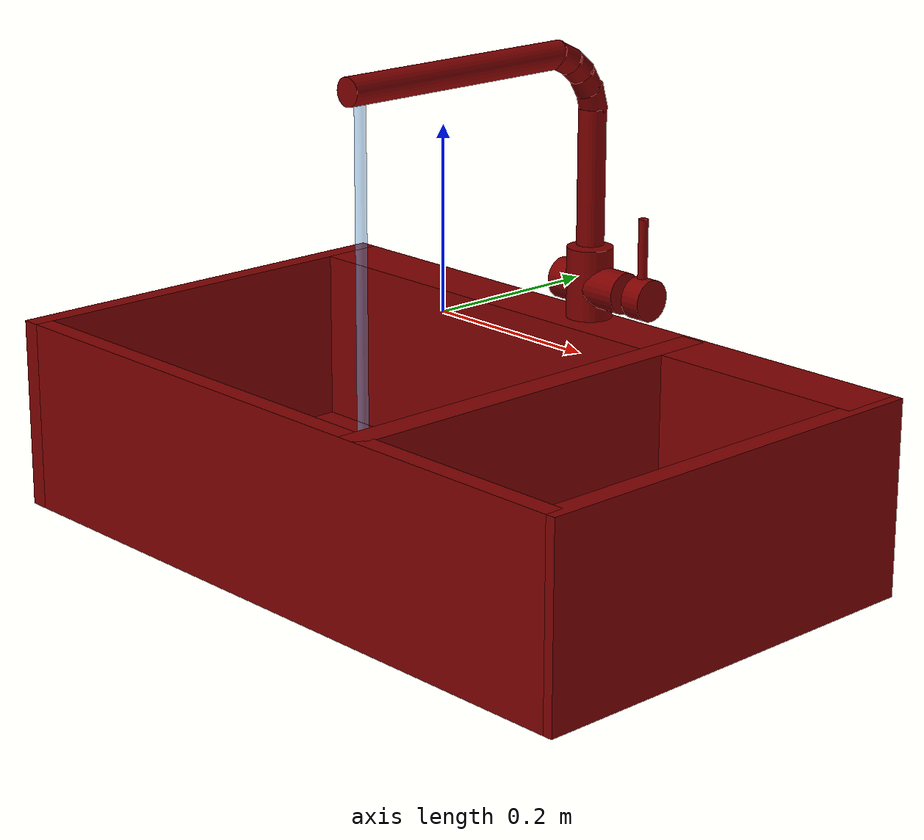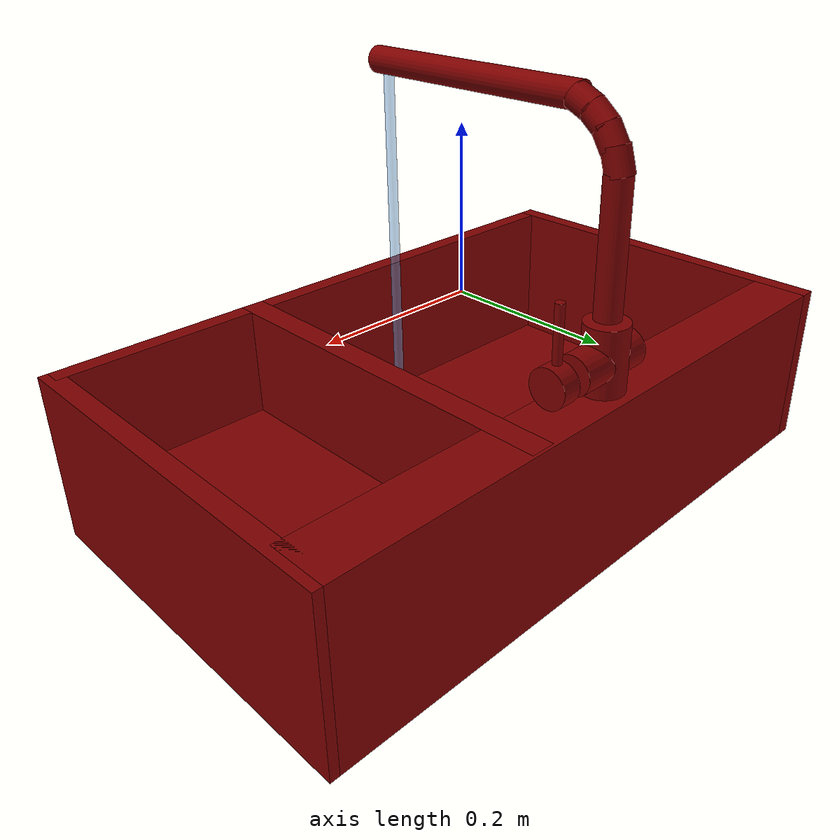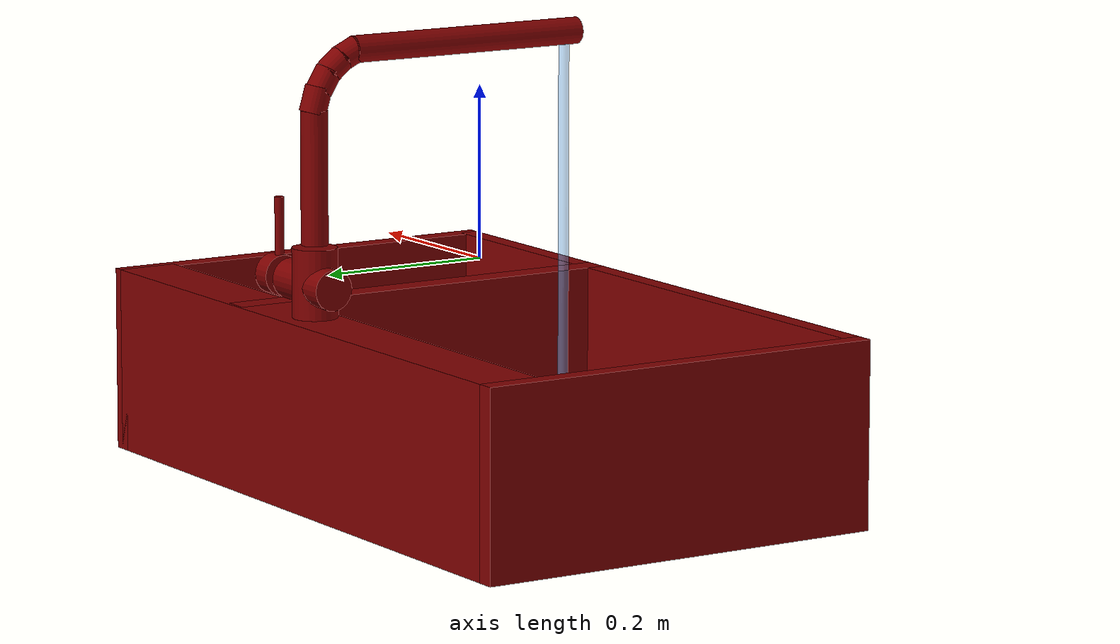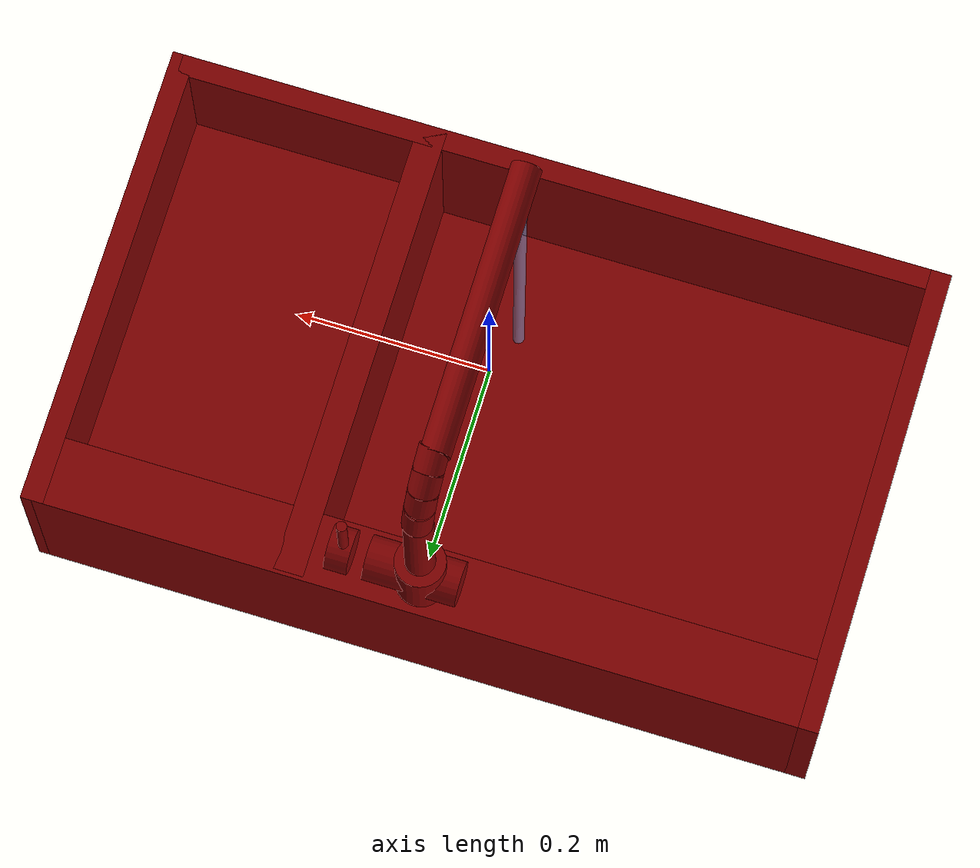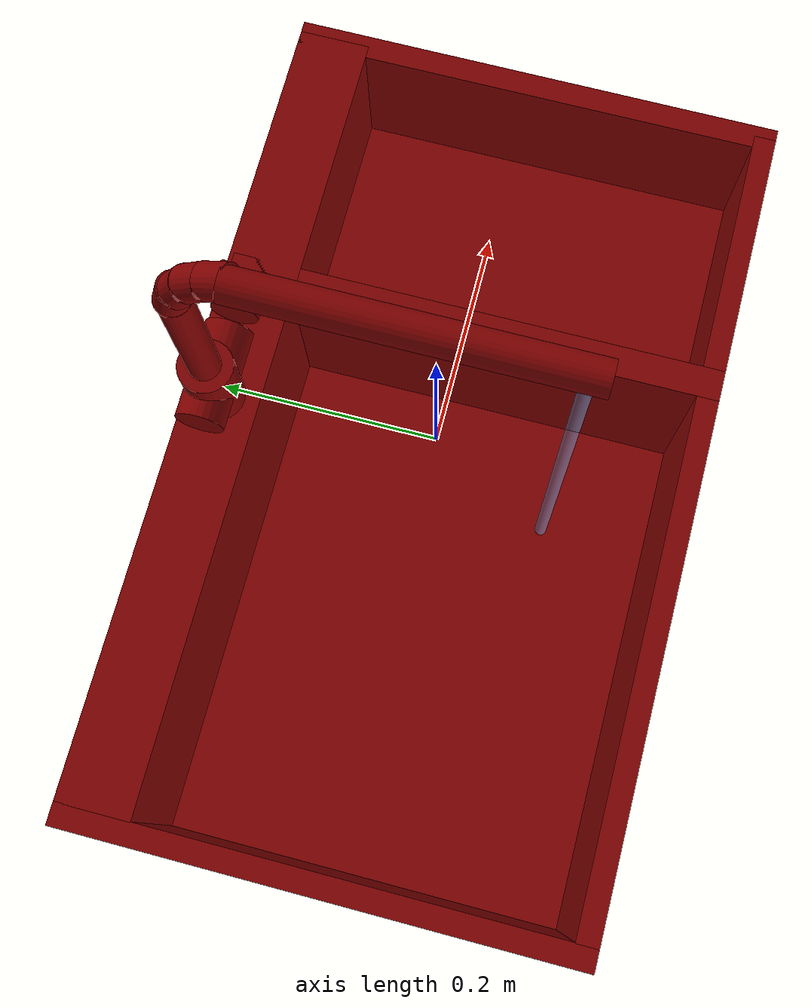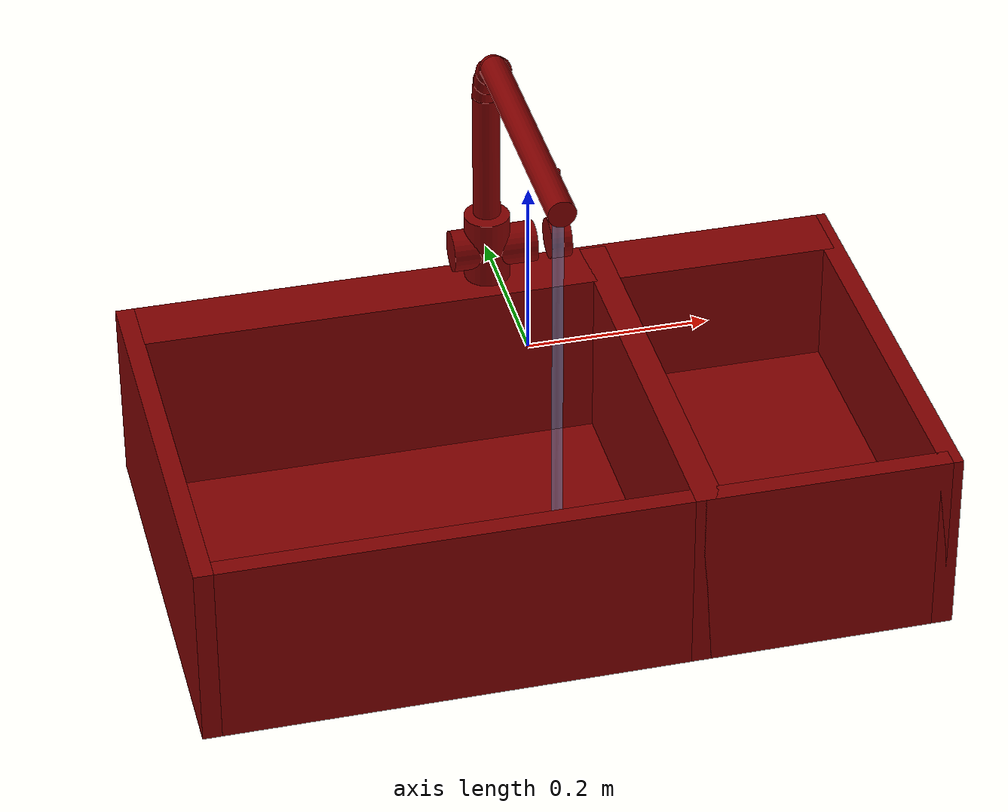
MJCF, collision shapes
<?xml version='1.0' encoding='UTF-8'?>
<mujoco model="model">
  <option timestep="0.002" gravity="0.0 0.0 -9.81"/>
  <compiler angle="radian"/>
  <asset>
    <mesh file="visuals/handle.obj" name="handle_vis"/>
    <mesh file="visuals/Body001.obj" name="Body001_vis"/>
    <mesh file="visuals/spout.obj" name="spout_vis"/>
    <texture file="visuals/T_BC001.png" name="Body001_material" type="2d"/>
    <material name="Body001_material" rgba="1 1 1 1.0" texture="Body001_material" shininess="0.2" specular="0.8"/>
    <texture file="visuals/T_BC001.png" name="handle_material" type="2d"/>
    <material name="handle_material" rgba="1 1 1 1.0" texture="handle_material" shininess="0.2" specular="1"/>
    <texture file="visuals/T_BC001.png" name="spout_material" type="2d"/>
    <material name="spout_material" rgba="1 1 1 1.0" texture="spout_material" shininess="0.1" specular="1"/>
  </asset>
  <default>
    <default class="visual">
      <geom conaffinity="0" contype="0" group="1" type="mesh"/>
    </default>
    <default class="collision">
      <geom group="0" rgba="0.5 0 0 0.5" solimp="0.998 0.998 0.001" solref="0.001 2"/>
    </default>
    <default class="spawn">
      <geom group="0" rgba="1 1 1 0.5" contype="0" conaffinity="0"/>
      <site group="0" rgba="1 1 1 0.5"/>
    </default>
    <default class="region">
      <geom group="1" conaffinity="0" contype="0" rgba="0 1 0 0"/>
    </default>
  </default>
  <worldbody>
    <body>
      <body name="object">
        <geom mesh="Body001_vis" type="mesh" solimp="0.998 0.998 0.001" solref="0.001 1" friction="0.95 0.3 0.1" class="visual" material="Body001_material"/>
        <geom class="collision" type="box" pos="0.4027493894100189 -2.0023435354232788e-08 -0.15891602635383606" size="0.011917037889361382 0.24768877029418945 0.10800227522850037" quat="1.0 0.0 0.0 0.0"/>
        <geom class="collision" type="box" pos="0.13484598696231842 -0.0019216181244701147 -0.15891599655151367" size="0.015448926016688347 0.24576714634895325 0.10800235718488693" quat="1.0 0.0 0.0 0.0"/>
        <geom class="collision" type="box" pos="-0.40376442670822144 -2.3283064365386963e-09 -0.15891601145267487" size="0.010902060195803642 0.24768877029418945 0.10800231993198395" quat="1.0 0.0 0.0 0.0"/>
        <geom class="collision" type="box" pos="0.004985332489013672 0.21187745034694672 -0.15891602635383606" size="0.39849328994750977 0.03581143915653229 0.10800234228372574" quat="1.0 0.0 0.0 0.0"/>
        <geom class="collision" type="box" pos="0.004985332489013672 -0.2367912232875824 -0.15891599655151367" size="0.39849328994750977 0.010897616855800152 0.10800230503082275" quat="1.0 0.0 0.0 0.0"/>
        <geom class="collision" type="cylinder" pos="0.005054663401097059 0.21510881185531616 -0.0069282203912734985" size="0.025999147444963455 0.03984614834189415" quat="1.0 0.0 0.0 0.0"/>
        <geom class="collision" type="cylinder" pos="0.011407990008592606 0.21510881185531616 -0.010194452479481697" size="0.023298535495996475 0.04807014390826225" quat="0.7071068286895752 -0.0 0.7071067690849304 0.0"/>
        <geom class="collision" type="box" pos="0.2707585096359253 -0.014923743903636932 -0.23015263676643372" size="0.13272012770175934 0.21208550035953522 0.036765649914741516" quat="1.0 0.0 0.0 0.0"/>
        <geom class="collision" type="box" pos="-0.13744108378887177 -0.014365993440151215 -0.2580556273460388" size="0.26114073395729065 0.2115277498960495 0.008862740360200405" quat="1.0 0.0 0.0 0.0"/>
        <geom class="collision" type="box" pos="-0.14511975646018982 0.028105847537517548 -0.2642620801925659" size="0.10243391990661621 0.10541987419128418 0.0026562875136733055" quat="1.0 0.0 0.0 0.0"/>
        <geom class="collision" type="box" pos="0.26155412197113037 0.028105847537517548 -0.24303308129310608" size="0.10243391990661621 0.10541987419128418 0.02388530969619751" quat="1.0 0.0 0.0 0.0"/>
        <body name="handle">
          <joint axis="1.0 0.0 0.0" pos="0.07599301636219025 0.21484947204589844 -0.010594408959150314" limited="true" name="handle_temp_joint" type="hinge" range="-0.7853981633974483 0.7853981633974483" damping="0.5" frictionloss="1" armature="2"/>
          <joint axis="0.0 1.0 0.0" pos="0.07599301636219025 0.21484947204589844 -0.010594408959150314" limited="true" name="handle_joint" type="hinge" range="0 0.5" damping="0.5" frictionloss="1" armature="2"/>
          <geom mesh="handle_vis" type="mesh" solimp="0.998 0.998 0.001" solref="0.001 1" friction="0.95 0.3 0.1" class="visual" material="handle_material"/>
          <geom class="collision" type="cylinder" pos="0.0870906412601471 0.21510881185531616 -0.010194453410804272" size="0.023298535495996475 0.011870143003761768" quat="0.7071068286895752 -0.0 0.7071067690849304 0.0"/>
          <geom name="handle_main" class="collision" type="cylinder" pos="0.08438366651535034 0.2148580551147461 0.04581039398908615" size="0.005322720855474472 0.03310320898890495" quat="1.0 0.0 0.0 0.0"/>
        </body>
        <body name="spout">
          <joint axis="0.0 0.0 1.0" pos="0.005200602114200592 0.21484708786010742 0.1507001668214798" limited="true" name="spout_joint" range="-1.0471975511965976 1.0471975511965976" type="hinge" damping="10"/>
          <site type="cylinder" rgba="0.5 0.75 1 0.5" size="0.006065880414098501 0.2444237470626831" pos="0.0027549334336072206 -0.11520309001207352 -0.006429988890886307" name="water"/>
          <geom mesh="spout_vis" type="mesh" solimp="0.998 0.998 0.001" solref="0.001 1" friction="0.95 0.3 0.1" class="visual" material="spout_material"/>
          <geom class="collision" type="cylinder" pos="0.005054686218500137 0.21510881185531616 0.11176735162734985" size="0.015406545251607895 0.07598001509904861" quat="1.0 0.0 0.0 0.0"/>
          <geom class="collision" type="cylinder" pos="0.0050546638667583466 0.169497549533844 0.24814218282699585" size="0.015406537801027298 0.012987262569367886" quat="0.8446128964424133 0.5353775024414062 -4.0203499016584207e-17 1.5572412876417143e-17"/>
          <geom class="collision" type="cylinder" pos="0.0027949847280979156 0.016916662454605103 0.2526940107345581" size="0.015406545251607895 0.14869332313537598" quat="0.7071067094802856 0.70710688829422 0.0 0.0" name="spout_main"/>
          <geom class="collision" type="cylinder" pos="0.0050546638667583466 0.18821552395820618 0.2361200749874115" size="0.015406537801027298 0.012987261638045311" quat="0.9053465723991394 0.4246734380722046 -1.4287056922570994e-17 5.5339450042787745e-18"/>
          <geom class="collision" type="cylinder" pos="0.0050546638667583466 0.20221593976020813 0.22014132142066956" size="0.015406537801027298 0.012987262569367886" quat="0.9633379578590393 0.2682909071445465 2.024374498660418e-17 -7.84120484995661e-18"/>
          <geom class="collision" type="cylinder" pos="0.0050546638667583466 0.21286845207214355 0.19898849725723267" size="0.015406537801027298 0.015115835703909397" quat="0.990159273147583 0.1399451047182083 4.703019745092719e-17 -1.8216661140565407e-17"/>
        </body>
        <geom class="region" name="reg_basin_left" type="box" pos="-0.13734858483076096 -0.02459847927093506 -0.14899107441306114" size="0.24926601892709732 0.19438741898536682 0.09380792251229286"/>
        <geom class="region" name="reg_basin_right" type="box" pos="0.27068477869033813 -0.025077663362026215 -0.12182622589170933" size="0.11251066422462463 0.19333620911836624 0.06632618962228298"/>
        <geom class="region" name="reg_main" type="box" pos="0.0 0.0 -0.15840411186218262" size="0.41566641426086426 0.24868877029418945 0.10951424932479858"/>
      </body>
    </body>
  </worldbody>
  <actuator>
    <motor name="handle_joint_actuator" joint="handle_joint" gear="10"/>
    <motor name="handle_temp_joint_actuator" joint="handle_temp_joint" gear="10"/>
    <motor name="spout_joint_actuator" joint="spout_joint" gear="10"/>
  </actuator>
</mujoco>
